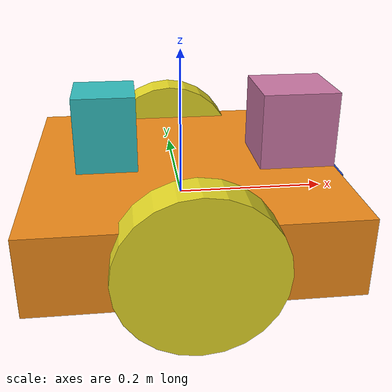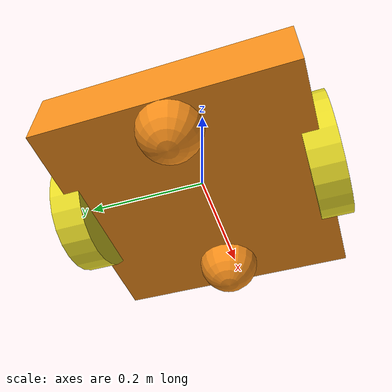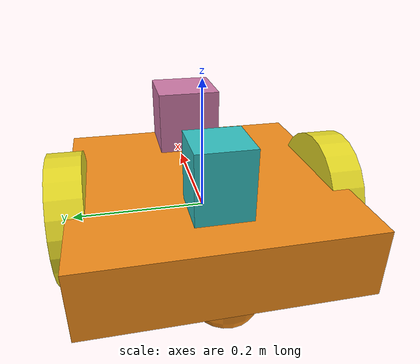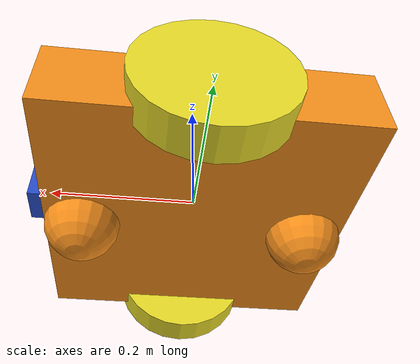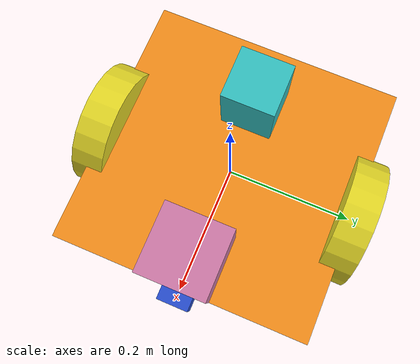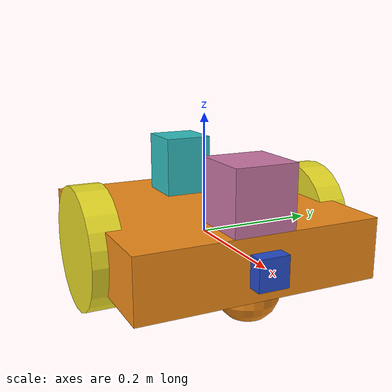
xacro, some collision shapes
<?xml version='1.0'?>

<robot name="my_robot" xmlns:xacro="http://www.ros.org/wiki/xacro">

<xacro:include filename="$(find my_robot)/urdf/my_robot.gazebo" />

  <link name="robot_footprint"></link>

  <joint name="robot_footprint_joint" type="fixed">
    <origin xyz="0 0 0" rpy="0 0 0" />
    <parent link="robot_footprint"/>
    <child link="chassis" />
  </joint>

  <link name='mid_body'>

      <collision name='mid_body_collision'>
        <origin xyz="0 0 0" rpy="0 0 0"/>
        <geometry>
          <box size=".08 .08 .1"/>
        </geometry>
      </collision>

      <visual name='mid_body_visual'>
        <origin xyz="0 0 0" rpy="0 0 0"/>
        <geometry>
          <box size=".08 .08 .1"/>
        </geometry>
      </visual>

      <inertial>
        <origin xyz="0 0 0" rpy="0 0 0"/>
        <mass value="1e-5"/>
        <inertia
          ixx="1e-6" ixy="0" ixz="0"
          iyy="1e-6" iyz="0"
          izz="1e-6"
        />
      </inertial>

  </link>

  <joint type="fixed" name="mid_body_hinge">

    <origin xyz="-0.1 0 0.1" rpy=" 0 0 0"/>
    <axis xyz="0 1 0"/>
    <child link="mid_body"/>
    <parent link="chassis"/>

  </joint>

  <link name='left_wheel'>

      <collision name='left_wheel_collision'>
        <origin xyz="0 0 0" rpy="0 1.5707 1.5707"/>
        <geometry>
          <cylinder radius="0.1" length="0.05"/>
        </geometry>
      </collision>

      <visual name='left_wheel_visual'>
        <origin xyz="0 0 0" rpy="0 1.5707 1.5707"/>
        <geometry>
          <cylinder radius="0.1" length="0.05"/>
        </geometry>
      </visual>

      <inertial>
        <origin xyz="0 0 0" rpy="0 1.5707 1.5707"/>
        <mass value="5"/>
        <inertia
          ixx="0.1" ixy="0" ixz="0"
          iyy="0.1" iyz="0"
          izz="0.1"
        />
      </inertial>

  </link>

  <joint type="continuous" name="left_wheel_hinge">

    <origin xyz="0 0.2 0" rpy="0 0 0"/>
    <child link="left_wheel"/>
    <parent link="chassis"/>
    <axis xyz="0 1 0" rpy="0 0 0"/>
    <limit effort="10000" velocity="1000"/>
    <dynamics damping="1.0" friction="1.0"/>

  </joint>

  <link name='right_wheel'>

      <collision name='right_wheel_collision'>
        <origin xyz="0 0 0" rpy="0 1.5707 1.5707"/>
        <geometry>
          <cylinder radius="0.1" length="0.05"/>
        </geometry>
      </collision>

      <visual name='right_wheel_visual'>
        <origin xyz="0 0 0" rpy="0 1.5707 1.5707"/>
        <geometry>
          <cylinder radius="0.1" length="0.05"/>
        </geometry>
      </visual>

      <inertial>
        <origin xyz="0 0 0" rpy="0 1.5707 1.5707"/>
        <mass value="5"/>
        <inertia
          ixx="0.1" ixy="0" ixz="0"
          iyy="0.1" iyz="0"
          izz="0.1"
        />
      </inertial>

  </link>

  <joint type="continuous" name="right_wheel_hinge">

    <origin xyz="0 -0.2 0" rpy="0 0 0"/>
    <child link="right_wheel"/>
    <parent link="chassis"/>
    <axis xyz="0 1 0" rpy="0 0 0"/>
    <limit effort="10000" velocity="1000"/>
    <dynamics damping="1.0" friction="1.0"/>

  </joint>

  <link name='camera'>

    <collision name='camera_collision'>
      <origin xyz="0 0 0" rpy="0 0 0"/>
      <geometry>
        <box size=".05 .05 .05"/>
      </geometry>
    </collision>

    <visual name='camera_visual'>
      <origin xyz="0 0 0" rpy="0 0 0"/>
      <geometry>
        <box size=".05 .05 .05"/>
      </geometry>
    </visual>

    <inertial>
      <origin xyz="0 0 0" rpy="0 0 0"/>
      <mass value="0.1"/>
      <inertia
        ixx="1e-6" ixy="0" ixz="0"
        iyy="1e-6" iyz="0"
        izz="1e-6"
      />
    </inertial>

    <box_inertia sizeX="0.05" sizeY="0.05" sizeZ="0.05" mass="0.1">
      <origin xyz="0 0 0" rpy="0 0 0" />
    </box_inertia>

  </link>

  <joint type='fixed' name='camera_joint'>

    <origin xyz="0.2 0 0" rpy=" 0 0 0"/>
    <axis xyz="0 1 0"/>
    <child link="camera"/>
    <parent link="chassis"/>

  </joint>

  <joint name="camera_optical_joint" type="fixed">

    <origin xyz="0 0 0" rpy="-1.5707 0 -1.5707"/>
    <child link="camera_link_optical"/>
    <parent link="camera"/>

  </joint>

  <link name="camera_link_optical">

  </link>

  <link name='hokuyo'>

    <collision name='lidar_collision'>
      <origin xyz="0 0 0" rpy="0 0 0"/>
      <geometry>
        <box
          size="0.1 0.1 0.1"
        />
      </geometry>
    </collision>

    <visual name='lidar_visual'>
      <origin xyz="0 0 0" rpy="0 0 0"/>
      <geometry>
        <mesh filename="package://my_robot/meshes/hokuyo.dae"/>
      </geometry>
    </visual>

    <inertial>
      <origin xyz="0 0 0" rpy="0 0 0"/>
      <mass value="1e-5"/>
      <inertia
        ixx="1e-6" ixy="0" ixz="0"
        iyy="1e-6" iyz="0"
        izz="1e-6"
      />
    </inertial>

  </link>

  <joint type='fixed' name='hokuyo_joint'>

    <origin xyz="0.15 0 0.1" rpy=" 0 0 0"/>
    <axis xyz="0 1 0"/>
    <child link="hokuyo"/>
    <parent link="chassis"/>

  </joint>

  <gazebo reference="chassis">
    <material> Gazebo/Orange</material>
  </gazebo>

  <gazebo reference="camera">
    <material> Gazebo/Blue</material>
  </gazebo>

  <gazebo reference="left_wheel">
    <material> Gazebo/Yellow</material>
  </gazebo>

  <gazebo reference="right_wheel">
    <material> Gazebo/Yellow</material>
  </gazebo>

  <gazebo reference="mid_body">
    <material> Gazebo/Turquoise</material>
  </gazebo>

  <gazebo reference="back_caster_visual">
    <material> Gazebo/Green</material>
  </gazebo>

  <gazebo reference="front_caster_visual">
    <material> Gazebo/Green</material>
  </gazebo>

  <link name='chassis'>
    <pose>0 0 0.1 0 0 0</pose>

    <inertial>
      <mass value="15.0"/>
      <origin xyz="0.0 0 0" rpy=" 0 0 0"/>
      <inertia
          ixx="0.1" ixy="0" ixz="0"
          iyy="0.1" iyz="0"
          izz="0.1"
      />

    </inertial>

    <collision name='chassis_collision'>
      <origin xyz="0 0 0" rpy=" 0 0 0"/>
      <geometry>
        <box size=".4 .4 .1"/>
      </geometry>
    </collision>

    <visual name='chassis_visual'>
      <origin xyz="0 0 0" rpy=" 0 0 0"/>
      <geometry>
        <box size=".4 .4 .1"/>
      </geometry>
    </visual>

    <collision name='back_caster_collision'>
      <origin xyz="-0.15 0 -0.05" rpy=" 0 0 0"/>
      <geometry>
        <sphere radius="0.0499"/>
      </geometry>
    </collision>

    <visual name='back_caster_visual'>
      <origin xyz="-0.15 0 -0.05" rpy=" 0 0 0"/>
      <geometry>
        <sphere radius="0.05"/>
      </geometry>
    </visual>

    <collision name='front_caster_collision'>
      <origin xyz="0.15 0 -0.05" rpy=" 0 0 0"/>
      <geometry>
        <sphere radius="0.0499"/>
      </geometry>
    </collision>

    <visual name='front_caster_visual'>
      <origin xyz="0.15 0 -0.05" rpy=" 0 0 0"/>
      <geometry>
        <sphere radius="0.05"/>
      </geometry>
    </visual>

  </link>

</robot>
